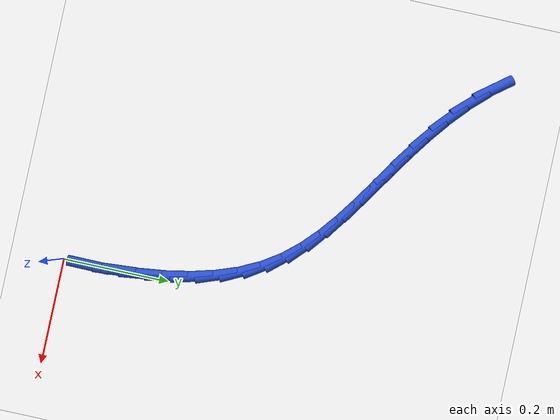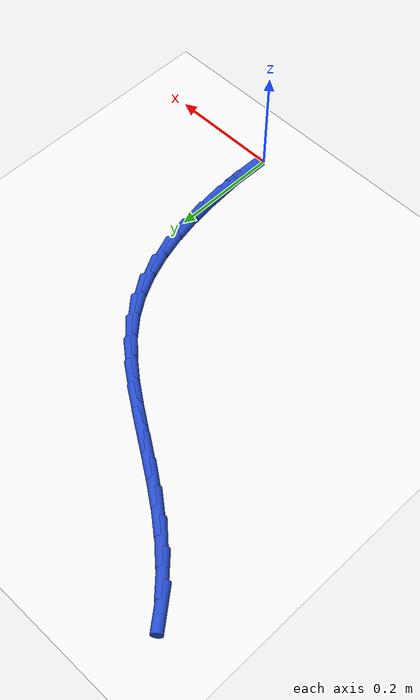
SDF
<sdf version="1.6">
 <world name="default">
  <model name="ground_plane">
   <static>1</static>
   <link name="link">
    <collision name="collision">
     <geometry><plane><normal>0 0 1</normal><size>100 100</size></plane></geometry>
     <surface><friction><ode><mu>100</mu><mu2>50</mu2></ode></friction></surface>
    </collision>
    <visual name="visual">
     <cast_shadows>0</cast_shadows>
     <geometry><plane><normal>0 0 1</normal><size>100 100</size></plane></geometry>
     <material>
      <script><uri>file://media/materials/scripts/gazebo.material</uri><name>Gazebo/WhiteGlow</name></script>
     </material>
    </visual>
   </link>
  </model>
  <model name="line">
   <link name="link_2">
    <pose>-0.0010001237713182748 0.09820514766329383 0.01 0 1.57 -1.4991520352543266</pose>
    <collision name="collision">
     <geometry><cylinder><radius>0.01</radius><length>0.08</length></cylinder></geometry>
    </collision>
    <visual name="visual">
     <material>
      <script><name>Gazebo/Blue</name><uri>file://media/materials/scripts/gazebo.material</uri></script>
     </material>
     <geometry><cylinder><radius>0.01</radius><length>0.08</length></cylinder></geometry>
    </visual>
   </link>
   <link name="link_3">
    <pose>-0.004497198541120264 0.14693323559097243 0.01 0 1.57 -1.4469087028775565</pose>
    <collision name="collision">
     <geometry><cylinder><radius>0.01</radius><length>0.08</length></cylinder></geometry>
    </collision>
    <visual name="visual">
     <material>
      <script><name>Gazebo/Blue</name><uri>file://media/materials/scripts/gazebo.material</uri></script>
     </material>
     <geometry><cylinder><radius>0.01</radius><length>0.08</length></cylinder></geometry>
    </visual>
   </link>
   <link name="link_4">
    <pose>-0.010445565380007899 0.19470155448136353 0.01 0 1.57 -1.3841360880103428</pose>
    <collision name="collision">
     <geometry><cylinder><radius>0.01</radius><length>0.08</length></cylinder></geometry>
    </collision>
    <visual name="visual">
     <material>
      <script><name>Gazebo/Blue</name><uri>file://media/materials/scripts/gazebo.material</uri></script>
     </material>
     <geometry><cylinder><radius>0.01</radius><length>0.08</length></cylinder></geometry>
    </visual>
   </link>
   <link name="link_5">
    <pose>-0.019185186897723965 0.24097752050848564 0.01 0 1.57 -1.3087057582401656</pose>
    <collision name="collision">
     <geometry><cylinder><radius>0.01</radius><length>0.08</length></cylinder></geometry>
    </collision>
    <visual name="visual">
     <material>
      <script><name>Gazebo/Blue</name><uri>file://media/materials/scripts/gazebo.material</uri></script>
     </material>
     <geometry><cylinder><radius>0.01</radius><length>0.08</length></cylinder></geometry>
    </visual>
   </link>
   <link name="link_6">
    <pose>-0.031056025704011277 0.2852285498463573 0.01 0 1.57 -1.2182019126401031</pose>
    <collision name="collision">
     <geometry><cylinder><radius>0.01</radius><length>0.08</length></cylinder></geometry>
    </collision>
    <visual name="visual">
     <material>
      <script><name>Gazebo/Blue</name><uri>file://media/materials/scripts/gazebo.material</uri></script>
     </material>
     <geometry><cylinder><radius>0.01</radius><length>0.08</length></cylinder></geometry>
    </visual>
   </link>
   <link name="link_7">
    <pose>-0.04639804440861261 0.3269220586689971 0.01 0 1.57 -1.1102317523187308</pose>
    <collision name="collision">
     <geometry><cylinder><radius>0.01</radius><length>0.08</length></cylinder></geometry>
    </collision>
    <visual name="visual">
     <material>
      <script><name>Gazebo/Blue</name><uri>file://media/materials/scripts/gazebo.material</uri></script>
     </material>
     <geometry><cylinder><radius>0.01</radius><length>0.08</length></cylinder></geometry>
    </visual>
   </link>
   <link name="link_8">
    <pose>-0.06555120562127074 0.36552546315042345 0.01 0 1.57 -0.9839544452226139</pose>
    <collision name="collision">
     <geometry><cylinder><radius>0.01</radius><length>0.08</length></cylinder></geometry>
    </collision>
    <visual name="visual">
     <material>
      <script><name>Gazebo/Blue</name><uri>file://media/materials/scripts/gazebo.material</uri></script>
     </material>
     <geometry><cylinder><radius>0.01</radius><length>0.08</length></cylinder></geometry>
    </visual>
   </link>
   <link name="link_9">
    <pose>-0.08883316092001198 0.4005363769206715 0.01 0 1.57 -0.8579236870166685</pose>
    <collision name="collision">
     <geometry><cylinder><radius>0.01</radius><length>0.08</length></cylinder></geometry>
    </collision>
    <visual name="visual">
     <material>
      <script><name>Gazebo/Blue</name><uri>file://media/materials/scripts/gazebo.material</uri></script>
     </material>
     <geometry><cylinder><radius>0.01</radius><length>0.08</length></cylinder></geometry>
    </visual>
   </link>
   <link name="link_10">
    <pose>-0.11610058674189572 0.4320763326073782 0.01 0 1.57 -0.753480139657743</pose>
    <collision name="collision">
     <geometry><cylinder><radius>0.01</radius><length>0.08</length></cylinder></geometry>
    </collision>
    <visual name="visual">
     <material>
      <script><name>Gazebo/Blue</name><uri>file://media/materials/scripts/gazebo.material</uri></script>
     </material>
     <geometry><cylinder><radius>0.01</radius><length>0.08</length></cylinder></geometry>
    </visual>
   </link>
   <link name="link_11">
    <pose>-0.14677643418356442 0.4608538998724555 0.01 0 1.57 -0.673907760602511</pose>
    <collision name="collision">
     <geometry><cylinder><radius>0.01</radius><length>0.08</length></cylinder></geometry>
    </collision>
    <visual name="visual">
     <material>
      <script><name>Gazebo/Blue</name><uri>file://media/materials/scripts/gazebo.material</uri></script>
     </material>
     <geometry><cylinder><radius>0.01</radius><length>0.08</length></cylinder></geometry>
    </visual>
   </link>
   <link name="link_12">
    <pose>-0.1802667996139773 0.48760046085481584 0.01 0 1.57 -0.6191192424963969</pose>
    <collision name="collision">
     <geometry><cylinder><radius>0.01</radius><length>0.08</length></cylinder></geometry>
    </collision>
    <visual name="visual">
     <material>
      <script><name>Gazebo/Blue</name><uri>file://media/materials/scripts/gazebo.material</uri></script>
     </material>
     <geometry><cylinder><radius>0.01</radius><length>0.08</length></cylinder></geometry>
    </visual>
   </link>
   <link name="link_13">
    <pose>-0.21597777940209323 0.5130473976933708 0.01 0 1.57 -0.5877596882000896</pose>
    <collision name="collision">
     <geometry><cylinder><radius>0.01</radius><length>0.08</length></cylinder></geometry>
    </collision>
    <visual name="visual">
     <material>
      <script><name>Gazebo/Blue</name><uri>file://media/materials/scripts/gazebo.material</uri></script>
     </material>
     <geometry><cylinder><radius>0.01</radius><length>0.08</length></cylinder></geometry>
    </visual>
   </link>
   <link name="link_14">
    <pose>-0.25331546991687165 0.5379260925270332 0.01 0 1.57 -0.5782236318461663</pose>
    <collision name="collision">
     <geometry><cylinder><radius>0.01</radius><length>0.08</length></cylinder></geometry>
    </collision>
    <visual name="visual">
     <material>
      <script><name>Gazebo/Blue</name><uri>file://media/materials/scripts/gazebo.material</uri></script>
     </material>
     <geometry><cylinder><radius>0.01</radius><length>0.08</length></cylinder></geometry>
    </visual>
   </link>
   <link name="link_15">
    <pose>-0.2916859675272715 0.5629679274947147 0.01 0 1.57 -0.5891331350586869</pose>
    <collision name="collision">
     <geometry><cylinder><radius>0.01</radius><length>0.08</length></cylinder></geometry>
    </collision>
    <visual name="visual">
     <material>
      <script><name>Gazebo/Blue</name><uri>file://media/materials/scripts/gazebo.material</uri></script>
     </material>
     <geometry><cylinder><radius>0.01</radius><length>0.08</length></cylinder></geometry>
    </visual>
   </link>
   <link name="link_16">
    <pose>-0.33049536860225204 0.5889042847353279 0.01 0 1.57 -0.619426323910296</pose>
    <collision name="collision">
     <geometry><cylinder><radius>0.01</radius><length>0.08</length></cylinder></geometry>
    </collision>
    <visual name="visual">
     <material>
      <script><name>Gazebo/Blue</name><uri>file://media/materials/scripts/gazebo.material</uri></script>
     </material>
     <geometry><cylinder><radius>0.01</radius><length>0.08</length></cylinder></geometry>
    </visual>
   </link>
   <link name="link_17">
    <pose>-0.36914976951077255 0.6164665463877846 0.01 0 1.57 -0.6681944307848896</pose>
    <collision name="collision">
     <geometry><cylinder><radius>0.01</radius><length>0.08</length></cylinder></geometry>
    </collision>
    <visual name="visual">
     <material>
      <script><name>Gazebo/Blue</name><uri>file://media/materials/scripts/gazebo.material</uri></script>
     </material>
     <geometry><cylinder><radius>0.01</radius><length>0.08</length></cylinder></geometry>
    </visual>
   </link>
   <link name="link_18">
    <pose>-0.4070552666217917 0.6463860945909969 0.01 0 1.57 -0.7343511809806393</pose>
    <collision name="collision">
     <geometry><cylinder><radius>0.01</radius><length>0.08</length></cylinder></geometry>
    </collision>
    <visual name="visual">
     <material>
      <script><name>Gazebo/Blue</name><uri>file://media/materials/scripts/gazebo.material</uri></script>
     </material>
     <geometry><cylinder><radius>0.01</radius><length>0.08</length></cylinder></geometry>
    </visual>
   </link>
   <link name="link_19">
    <pose>-0.4436179563042692 0.6793943114838776 0.01 0 1.57 -0.8162093784990165</pose>
    <collision name="collision">
     <geometry><cylinder><radius>0.01</radius><length>0.08</length></cylinder></geometry>
    </collision>
    <visual name="visual">
     <material>
      <script><name>Gazebo/Blue</name><uri>file://media/materials/scripts/gazebo.material</uri></script>
     </material>
     <geometry><cylinder><radius>0.01</radius><length>0.08</length></cylinder></geometry>
    </visual>
   </link>
   <link name="link_20">
    <pose>-0.4782439349271637 0.7162225792053383 0.01 0 1.57 -0.9110923795794491</pose>
    <collision name="collision">
     <geometry><cylinder><radius>0.01</radius><length>0.08</length></cylinder></geometry>
    </collision>
    <visual name="visual">
     <material>
      <script><name>Gazebo/Blue</name><uri>file://media/materials/scripts/gazebo.material</uri></script>
     </material>
     <geometry><cylinder><radius>0.01</radius><length>0.08</length></cylinder></geometry>
    </visual>
   </link>
   <link name="link_161">
    <pose>0.0004667106150102766 0.04912513806936017 0.01 0 1.57 1.5612961687782647</pose>
    <collision name="collision">
     <geometry><cylinder><radius>0.01</radius><length>0.08</length></cylinder></geometry>
    </collision>
    <visual name="visual">
     <material>
      <script><name>Gazebo/Blue</name><uri>file://media/materials/scripts/gazebo.material</uri></script>
     </material>
     <geometry><cylinder><radius>0.01</radius><length>0.08</length></cylinder></geometry>
    </visual>
   </link>
  </model>
 </world>
</sdf>
